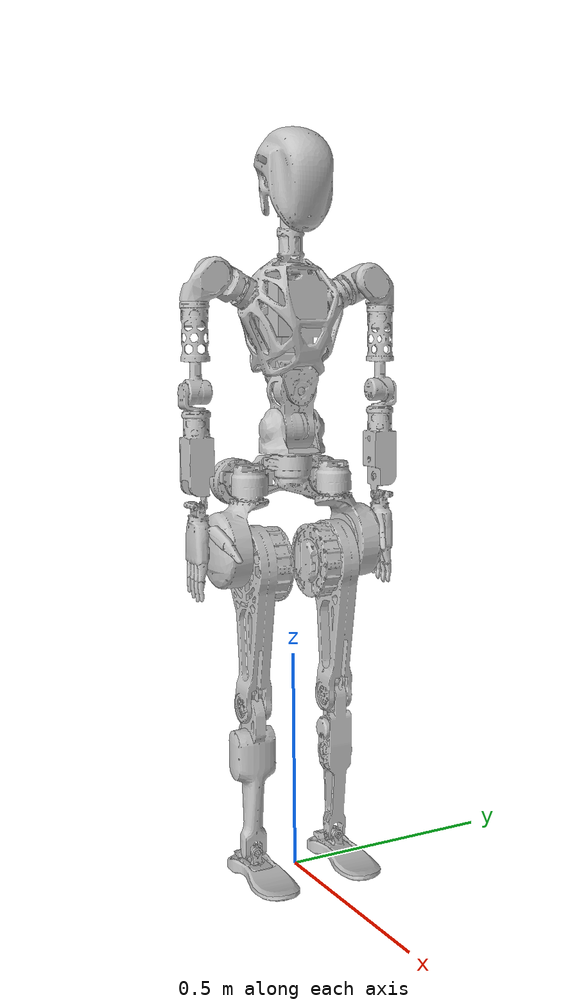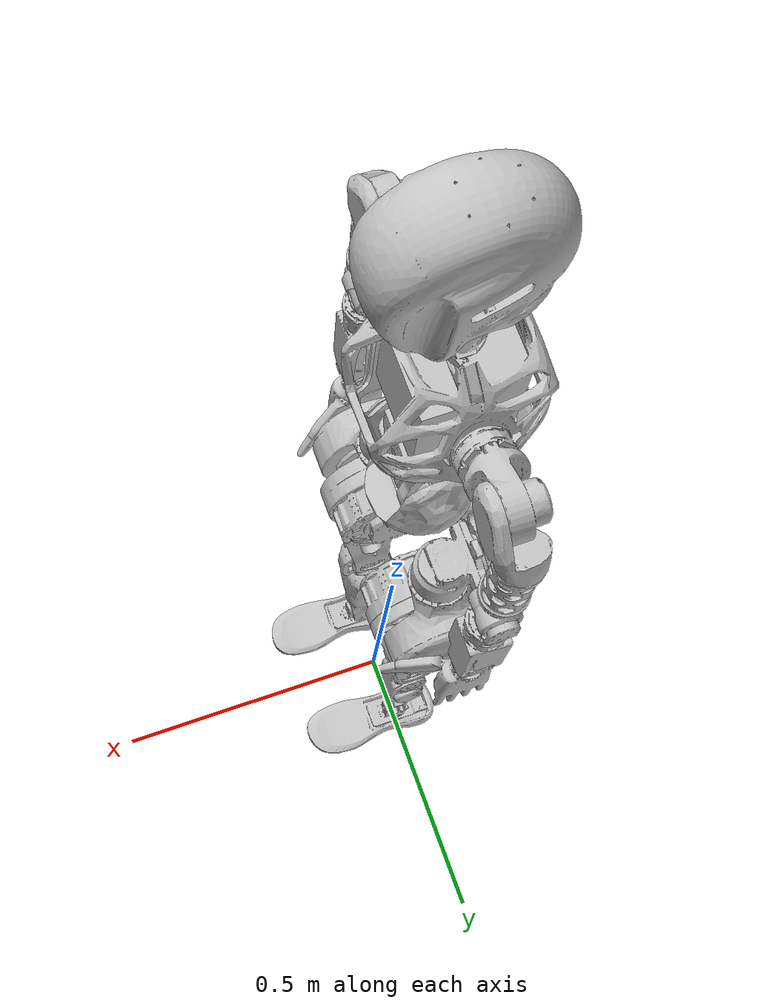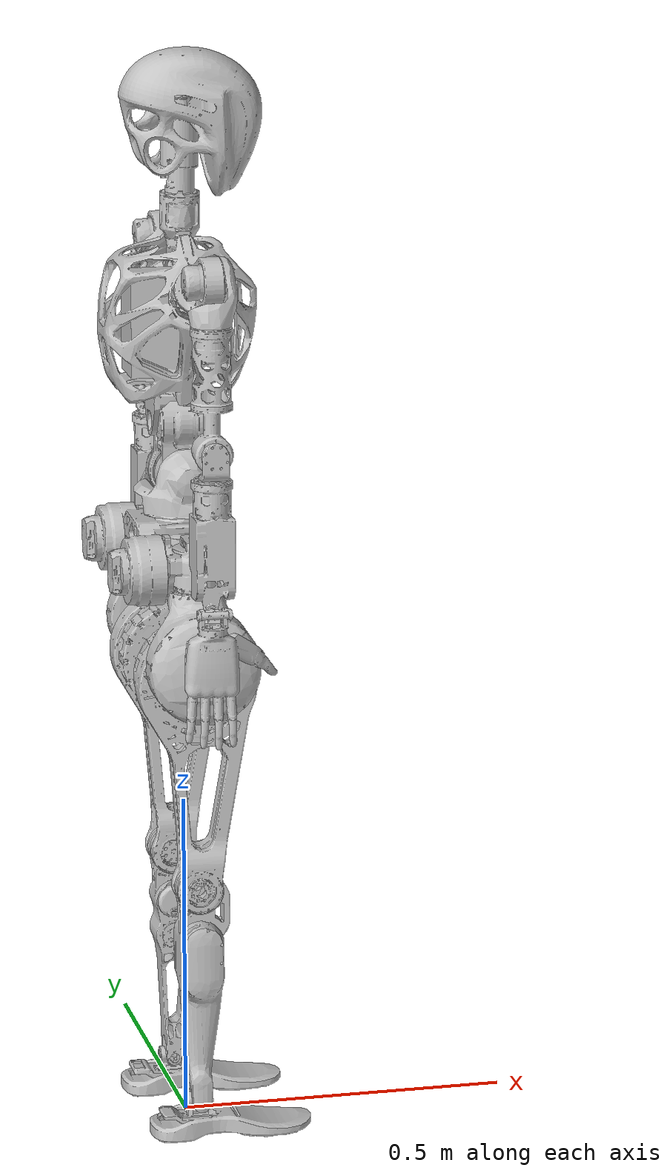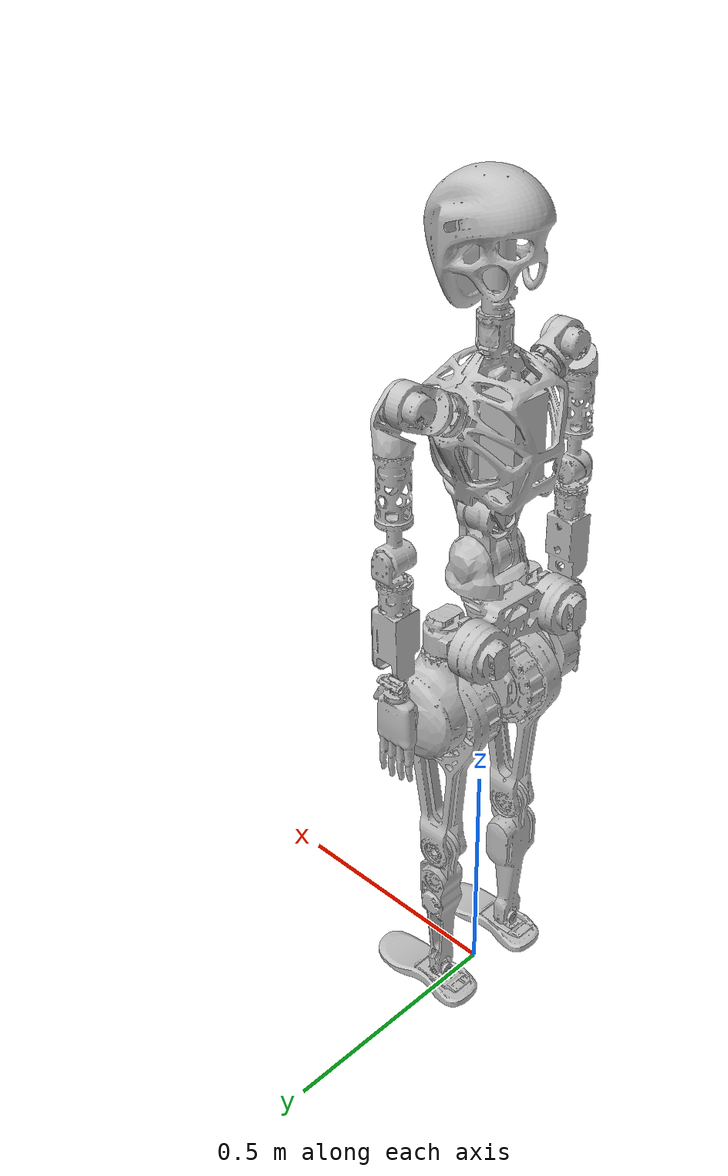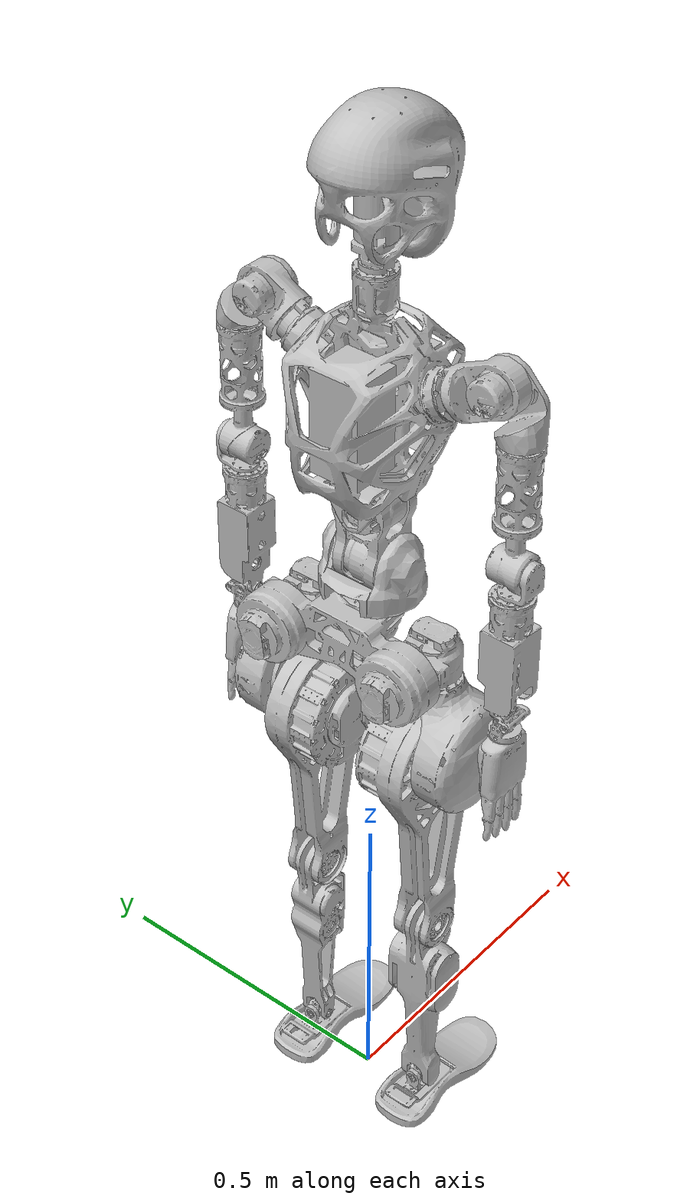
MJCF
<mujoco model="gr1t1">
    <compiler angle="radian" meshdir="assets" autolimits="true"/>

    <default>
        <default class="gr1t1">
            <joint damping="1" armature="0.1"/>
            <default class="visual">
                <geom type="mesh" contype="0" conaffinity="0" group="2"/>
            </default>
            <default class="collision">
                <geom group="3" mass="0" density="0"/>
                <default class="base_collision">
                    <geom type="capsule" size=".014"/>
                </default>
            </default>
            <site size="0.001" rgba="0.5 0.5 0.5 0.3" group="4"/>
        </default>
    </default>

    <asset>
        <mesh name="base" file="base.STL"/>
        <mesh name="link_left_thigh_roll" file="l_thigh_roll.STL"/>
        <mesh name="link_left_thigh_yaw" file="l_thigh_yaw.STL"/>
        <mesh name="link_left_thigh_pitch" file="l_thigh_pitch.STL"/>
        <mesh name="link_left_shank_pitch" file="l_shank_pitch.STL"/>
        <mesh name="link_left_foot_pitch" file="l_foot_pitch.STL"/>
        <mesh name="link_left_foot_roll" file="l_foot_roll.STL"/>
        <mesh name="link_right_thigh_roll" file="r_thigh_roll.STL"/>
        <mesh name="link_right_thigh_yaw" file="r_thigh_yaw.STL"/>
        <mesh name="link_right_thigh_pitch" file="r_thigh_pitch.STL"/>
        <mesh name="link_right_shank_pitch" file="r_shank_pitch.STL"/>
        <mesh name="link_right_foot_pitch" file="r_foot_pitch.STL"/>
        <mesh name="link_right_foot_roll" file="r_foot_roll.STL"/>
        <mesh name="link_waist_yaw" file="waist_yaw.STL"/>
        <mesh name="link_waist_pitch" file="waist_pitch.STL"/>
        <mesh name="link_waist_roll" file="waist_roll.STL"/>
        <mesh name="link_head_yaw" file="head_yaw.STL"/>
        <mesh name="link_head_roll" file="head_roll.STL"/>
        <mesh name="link_head_pitch" file="head_pitch.STL"/>
        <mesh name="link_left_upper_arm_pitch" file="l_upper_arm_pitch.STL"/>
        <mesh name="link_left_upper_arm_roll" file="l_upper_arm_roll.STL"/>
        <mesh name="link_left_upper_arm_yaw" file="l_upper_arm_yaw.STL"/>
        <mesh name="link_left_lower_arm_pitch" file="l_lower_arm_pitch.STL"/>
        <mesh name="link_left_hand_yaw" file="l_hand_yaw.STL"/>
        <mesh name="link_left_hand_roll" file="l_hand_roll.STL"/>
        <mesh name="link_left_hand_pitch" file="l_hand_pitch.STL"/>
        <mesh name="link_right_upper_arm_pitch" file="r_upper_arm_pitch.STL"/>
        <mesh name="link_right_upper_arm_roll" file="r_upper_arm_roll.STL"/>
        <mesh name="link_right_upper_arm_yaw" file="r_upper_arm_yaw.STL"/>
        <mesh name="link_right_lower_arm_pitch" file="r_lower_arm_pitch.STL"/>
        <mesh name="link_right_hand_yaw" file="r_hand_yaw.STL"/>
        <mesh name="link_right_hand_roll" file="r_hand_roll.STL"/>
        <mesh name="link_right_hand_pitch" file="r_hand_pitch.STL"/>
    </asset>

    <worldbody>
        <light mode="targetbodycom" target="base" pos="2 0 2.5"/>

        <body name="base" pos="0 0 0.95" childclass="gr1t1">
            <inertial pos="-0.0508888 0.000109183 -0.0455794" quat="0.706855 0.707166 0.0123661 -0.0109307" mass="6.45117" diaginertia="0.0149302 0.0127972 0.00640923"/>
            <freejoint/>

            <geom class="visual" rgba="0.752941 0.752941 0.752941 1" mesh="base"/>
            <body name="link_left_thigh_roll" pos="-0.047999 0.105 -0.057493">
                <inertial pos="0.04163 3.4568e-05 -0.0021382" quat="0.575529 0.581908 -0.40597 0.406619" mass="1.1437" diaginertia="0.00117548 0.00100413 0.000943892"/>
                <joint name="joint_left_hip_roll" pos="0 0 0" axis="1 0 0" range="-0.09 0.79"/>
                <geom class="visual" rgba="0.752941 0.752941 0.752941 1" mesh="link_left_thigh_roll"/>
                <geom class="collision" size="0.05 0.03" pos="0 0 0" quat="0.707107 0 0.707107 0" type="capsule" rgba="0.752941 0.752941 0.752941 1"/>
                <body name="link_left_thigh_yaw" pos="0.048 0 -0.030499">
                    <inertial pos="0.00018348 0.046462 -0.10389" quat="0.704251 -0.0226446 -0.0453749 0.708138" mass="3.9888" diaginertia="0.0163385 0.0100158 0.00924336"/>
                    <joint name="joint_left_hip_yaw" pos="0 0 0" axis="0 0 1" range="-0.7 0.7"/>
                    <geom class="visual" rgba="0.752941 0.752941 0.752941 1" mesh="link_left_thigh_yaw"/>
                    <body name="link_left_thigh_pitch" pos="0 0 -0.11">
                        <inertial pos="0.0028493 -0.021688 -0.090886" quat="0.707411 -0.0125435 -0.0111264 0.706604" mass="6.369" diaginertia="0.0532352 0.0425096 0.0134363"/>
                        <joint name="joint_left_hip_pitch" pos="0 0 0" axis="0 1 0" range="-1.75 0.7"/>
                        <geom class="visual" rgba="0.752941 0.752941 0.752941 1" mesh="link_left_thigh_pitch"/>
                        <geom class="collision" size="0.05 0.125" pos="0 0 -0.15" type="capsule" rgba="0.75294 0.75294 0.75294 1"/>
                        <body name="link_left_shank_pitch" pos="0 2.4606e-05 -0.36">
                            <inertial pos="0.0024312 -2.9945e-05 -0.11554" quat="0.692137 0.00134576 0.00140217 0.721764" mass="2.1895" diaginertia="0.0162703 0.016117 0.00113627"/>
                            <joint name="joint_left_knee_pitch" pos="0 0 0" axis="0 1 0" range="-0.09 1.92"/>
                            <geom class="visual" rgba="0.752941 0.752941 0.752941 1" mesh="link_left_shank_pitch"/>
                            <geom class="collision" size="0.05 0.1" pos="0 0 -0.15" type="capsule" rgba="0.75294 0.75294 0.75294 1"/>
                            <body name="link_left_foot_pitch" pos="0 2.3239e-05 -0.34">
                                <inertial pos="1.748e-11 4.3804e-11 0" quat="1 3.42295e-05 -6.07362e-06 -2.07897e-10" mass="0.080335" diaginertia="5.1022e-06 4.3976e-06 4.188e-06"/>
                                <joint name="joint_left_ankle_pitch" pos="0 0 0" axis="0 1 0" range="-1.05 0.52"/>
                                <geom class="visual" rgba="0.752941 0.752941 0.752941 1" mesh="link_left_foot_pitch"/>
                                <body name="link_left_foot_roll">
                                    <inertial pos="0.039446 0.00035757 -0.038101" quat="-0.00087198 0.709539 -0.00177594 0.704664" mass="0.584" diaginertia="0.00271032 0.0024027 0.000369145"/>
                                    <joint name="joint_left_ankle_roll" pos="0 0 0" axis="1 0 0" range="-0.44 0.44"/>
                                    <geom class="visual" rgba="0.75294 0.75294 0.75294 1" mesh="link_left_foot_roll"/>
                                    <geom class="collision" name="l_foot_1" size="0.02 0.10" pos="0.05 0.02 -0.035" quat="0.707105 0 0.707108 0" type="capsule" rgba="0.75294 0.75294 0.75294 1"/>
                                    <geom class="collision" name="l_foot_2" size="0.02 0.10" pos="0.05 -0.02 -0.035" quat="0.707105 0 0.707108 0" type="capsule" rgba="0.75294 0.75294 0.75294 1"/>
                                </body>
                            </body>
                        </body>
                    </body>
                </body>
            </body>
            <body name="link_right_thigh_roll" pos="-0.047999 -0.105 -0.057508">
                <inertial pos="0.0416295 3.45678e-05 -0.00213824" quat="0.57555 0.581927 -0.405942 0.406589" mass="1.14367" diaginertia="0.00117548 0.00100417 0.000943891"/>
                <joint name="joint_right_hip_roll" pos="0 0 0" axis="1 0 0" range="-0.79 0.09"/>
                <geom class="visual" rgba="0.752941 0.752941 0.752941 1" mesh="link_right_thigh_roll"/>
                <geom class="collision" size="0.05 0.03" pos="0 0 0" quat="0.707107 0 0.707107 0" type="capsule" rgba="0.752941 0.752941 0.752941 1"/>
                <body name="link_right_thigh_yaw" pos="0.048 0 -0.030499">
                    <inertial pos="-0.00159762 -0.0464482 -0.103899" quat="0.709186 -0.0420808 -0.0194028 0.703497" mass="3.98882" diaginertia="0.0163388 0.0100142 0.00924469"/>
                    <joint name="joint_right_hip_yaw" pos="0 0 0" axis="0 0 1" range="-0.7 0.7"/>
                    <geom class="visual" rgba="0.752941 0.752941 0.752941 1" mesh="link_right_thigh_yaw"/>
                    <body name="link_right_thigh_pitch" pos="0 0 -0.11">
                        <inertial pos="0.002842 0.0217009 -0.0919987" quat="0.706586 -0.0113774 -0.0126258 0.707423" mass="6.36895" diaginertia="0.0532349 0.0424818 0.0134641"/>
                        <joint name="joint_right_hip_pitch" pos="0 0 0" axis="0 1 0" range="-1.75 0.7"/>
                        <geom class="visual" rgba="0.752941 0.752941 0.752941 1" mesh="link_right_thigh_pitch"/>
                        <geom class="collision" size="0.05 0.125" pos="0 0 -0.15" type="capsule" rgba="0.75294 0.75294 0.75294 1"/>
                        <body name="link_right_shank_pitch" pos="0 2.4606e-05 -0.36">
                            <inertial pos="0.00236658 4.56188e-05 -0.115532" quat="0.71872 0.00154106 0.00120241 0.695296" mass="2.18947" diaginertia="0.0162708 0.0161183 0.00113536"/>
                            <joint name="joint_right_knee_pitch" pos="0 0 0" axis="0 1 0" range="-0.09 1.92"/>
                            <geom class="visual" rgba="0.752941 0.752941 0.752941 1" mesh="link_right_shank_pitch"/>
                            <geom class="collision" size="0.05 0.1" pos="0 0 -0.15" type="capsule" rgba="0.75294 0.75294 0.75294 1"/>
                            <body name="link_right_foot_pitch" pos="0 2.3239e-05 -0.34">
                                <inertial pos="1.75705e-11 4.40342e-11 0" quat="1 3.42336e-05 -6.07409e-06 -2.07938e-10" mass="0.0799219" diaginertia="5.11122e-06 4.40004e-06 4.17954e-06"/>
                                <joint name="joint_right_ankle_pitch" pos="0 0 0" axis="0 1 0" range="-1.05 0.52"/>
                                <geom class="visual" rgba="0.752941 0.752941 0.752941 1" mesh="link_right_foot_pitch"/>
                                <body name="link_right_foot_roll">
                                    <inertial pos="0.043909 -0.00032475 -0.039419" quat="0.000727105 0.710094 0.00155959 0.704104" mass="0.58089" diaginertia="0.00280098 0.0024886 0.000368482"/>
                                    <joint name="joint_right_ankle_roll" pos="0 0 0" axis="1 0 0" range="-0.44 0.44"/>
                                    <geom class="visual" rgba="0.752941 0.752941 0.752941 1" mesh="link_right_foot_roll"/>
                                    <geom class="collision" name="r_foot_1" size="0.02 0.10" pos="0.05 0.02 -0.035" quat="0.707105 0 0.707108 0" type="capsule" rgba="0.752941 0.752941 0.752941 1"/>
                                    <geom class="collision" name="r_foot_2" size="0.02 0.10" pos="0.05 -0.02 -0.035" quat="0.707105 0 0.707108 0" type="capsule" rgba="0.752941 0.752941 0.752941 1"/>
                                </body>
                            </body>
                        </body>
                    </body>
                </body>
            </body>
            <body name="link_waist_yaw" pos="0 0 0.0065">
                <inertial pos="-0.010388 -0.00169636 0.0224709" quat="8.03475e-05 0.752953 -6.91813e-06 0.658075" mass="0.37886" diaginertia="0.000387148 0.000354992 0.000193448"/>
                <joint name="joint_waist_yaw" pos="0 0 0" axis="0 0 1" range="-1.05 1.05"/>
                <geom class="visual" rgba="0.752941 0.752941 0.752941 1" mesh="link_waist_yaw"/>
                <geom class="collision" size="0.05 0.01" pos="0 0 -0.06" type="capsule" rgba="0.752941 0.752941 0.752941 1"/>
                <body name="link_waist_pitch" pos="0 0 0.055">
                    <inertial pos="0.00229173 -0.00229364 0.0425378" quat="0.998452 -0.0194486 0.0162447 0.0495079" mass="4.40328" diaginertia="0.00487449 0.00487146 0.00355351"/>
                    <joint name="joint_waist_pitch" pos="0 0 0" axis="0 1 0" range="-0.52 1.22"/>
                    <geom class="visual" rgba="0.752941 0.752941 0.752941 1" mesh="link_waist_pitch"/>
                    <geom class="collision" size="0.05 0.03" pos="0 0 0" quat="0.707107 0.707107 0 0" type="capsule" rgba="0.752941 0.752941 0.752941 1"/>
                    <body name="link_waist_roll" pos="0 0 0.085">
                        <inertial pos="-0.00982804 -1.2954e-05 0.160653" quat="0.999997 1.84368e-05 -0.00260593 -4.00255e-05" mass="7.34393" diaginertia="0.0305266 0.0217567 0.0136783"/>
                        <joint name="joint_waist_roll" pos="0 0 0" axis="1 0 0" range="-0.7 0.7"/>
                        <geom class="visual" rgba="0.752941 0.752941 0.752941 1" mesh="link_waist_roll"/>
                        <geom class="collision" size="0.1 0.07" pos="0 0 0.15" type="capsule" rgba="0.752941 0.752941 0.752941 1"/>
                        <body name="link_head_yaw" pos="0 -2.3548e-05 0.34453">
                            <inertial pos="0.000255273 -1.43143e-05 0.0571737" quat="0.698659 0.111628 0.112302 0.697713" mass="0.168425" diaginertia="0.00013241 0.000126266 6.86988e-05"/>
                            <joint name="joint_head_yaw" pos="0 0 0" axis="0 0 1" range="-2.71 2.71"/>
                            <geom class="visual" rgba="0.752941 0.752941 0.752941 1" mesh="link_head_yaw"/>
                            <body name="link_head_roll" pos="0 0 0.1225">
                                <inertial pos="-0.000539717 0.00299723 -0.00194711" quat="0.498775 0.509039 0.50481 0.487104" mass="0.0189574" diaginertia="5.66154e-06 3.71917e-06 3.07146e-06"/>
                                <joint name="joint_head_roll" pos="0 0 0" axis="1 0 0" range="-0.35 0.35"/>
                                <geom class="visual" rgba="0.752941 0.752941 0.752941 1" mesh="link_head_roll"/>
                                <body name="link_head_pitch">
                                    <inertial pos="0.0179937 0.000157203 -0.0107884" quat="-0.00317787 0.890883 0.0047882 0.454197" mass="0.315067" diaginertia="0.00129389 0.00105273 0.000852366"/>
                                    <joint name="joint_head_pitch" pos="0 0 0" axis="0 1 0" range="-0.52 0.35"/>
                                    <geom class="visual" rgba="0.752941 0.752941 0.752941 1" mesh="link_head_pitch"/>
                                    <geom class="collision" size="0.07" pos="0 0 0" rgba="0.75294 0.75294 0.75294 1"/>
                                </body>
                            </body>
                        </body>
                        <body name="link_left_upper_arm_pitch" pos="0 0.12661 0.21727" quat="0.976289 0.216473 0 0">
                            <inertial pos="0.00515733 0.0588337 0.000122944" quat="0.999793 0.0203364 -0.000117253 0.0011083" mass="0.777394" diaginertia="0.000546411 0.000340581 0.000319359"/>
                            <joint name="joint_left_shoulder_pitch" pos="0 0 0" axis="0 1 0" range="-2.79 1.92"/>
                            <geom class="visual" rgba="0.752941 0.752941 0.752941 1" mesh="link_left_upper_arm_pitch"/>
                            <body name="link_left_upper_arm_roll" pos="0 0.067 0" quat="0.976289 -0.216473 0 0">
                                <inertial pos="0.0260055 0.0238305 -0.0272078" quat="0.906707 0.298574 0.228734 -0.190834" mass="0.084111" diaginertia="9.66711e-05 8.99184e-05 2.54726e-05"/>
                                <joint name="joint_left_shoulder_roll" pos="0 0 0" axis="1 0 0" range="-0.57 3.27"/>
                                <geom class="visual" rgba="0.752941 0.752941 0.752941 1" mesh="link_left_upper_arm_roll"/>
                                <geom class="collision" size="0.04" pos="0 0 0" rgba="0.75294 0.75294 0.75294 1"/>
                                <body name="link_left_upper_arm_yaw" pos="0 0.040004 -0.057502">
                                    <inertial pos="-4.12427e-05 0.00135031 -0.101007" quat="0.706543 0.0248514 -0.0268343 0.706724" mass="0.78993" diaginertia="0.000480863 0.000420363 0.000315608"/>
                                    <joint name="joint_left_shoulder_yaw" pos="0 0 0" axis="0 0 1" range="-2.97 2.97"/>
                                    <geom class="visual" rgba="0.752941 0.752941 0.752941 1" mesh="link_left_upper_arm_yaw"/>
                                    <geom class="collision" size="0.03 0.055" pos="0 0 -0.07" type="capsule" rgba="0.752941 0.752941 0.752941 1"/>
                                    <body name="link_left_lower_arm_pitch" pos="0 1.28869e-05 -0.188546">
                                        <inertial pos="2.60519e-07 0.0196937 -0.0210902" quat="0.675254 -0.209845 0.209837 0.675252" mass="0.0553958" diaginertia="2.92256e-05 2.63267e-05 1.3293e-05"/>
                                        <joint name="joint_left_elbow_pitch" pos="0 0 0" axis="0 1 0" range="-2.27 2.27"/>
                                        <geom class="visual" rgba="0.752941 0.752941 0.752941 1" mesh="link_left_lower_arm_pitch"/>
                                        <body name="link_left_hand_yaw" pos="0 0 -0.0405043">
                                            <inertial pos="-4.20996e-05 0.000336116 -0.0559829" quat="0.999784 -0.0189715 -0.00676208 0.00509819" mass="0.606076"
                                                      diaginertia="0.000747266 0.000709257 0.000280769"/>
                                            <joint name="joint_left_wrist_yaw" pos="0 0 0" axis="0 0 1" range="-2.97 2.97"/>
                                            <geom class="visual" rgba="0.752941 0.752941 0.752941 1" mesh="link_left_hand_yaw"/>
                                            <geom class="collision" size="0.035 0.085" pos="0 0 -0.08" type="capsule" rgba="0.752941 0.752941 0.752941 1"/>
                                            <body name="link_left_hand_roll" pos="0 1.3775e-05 -0.20155">
                                                <inertial pos="-1.5483e-08 -0.00044846 -1.9394e-08" quat="0 0.7071 0 0.707114" mass="0.0054473" diaginertia="3.6036e-07 3.5527e-07 7.344e-08"/>
                                                <joint name="joint_left_wrist_roll" pos="0 0 0" axis="1 0 0" range="-0.61 0.61"/>
                                                <geom class="visual" rgba="0.752941 0.752941 0.752941 1" mesh="link_left_hand_roll"/>
                                                <body name="link_left_hand_pitch">
                                                    <inertial pos="0.0071289 -0.0026192 -0.078567" quat="0.298548 0.646339 0.631172 0.307795" mass="0.5239"
                                                              diaginertia="0.000345825 0.000211684 0.000195941"/>
                                                    <joint name="joint_left_wrist_pitch" pos="0 0 0" axis="0 1 0" range="-0.61 0.61"/>
                                                    <geom class="visual" rgba="0.752941 0.752941 0.752941 1" mesh="link_left_hand_pitch"/>
                                                    <geom class="collision" size="0.04" pos="0 0 -0.07" rgba="0.75294 0.75294 0.75294 1"/>
                                                </body>
                                            </body>
                                        </body>
                                    </body>
                                </body>
                            </body>
                        </body>
                        <body name="link_right_upper_arm_pitch" pos="0 -0.12664 0.21725" quat="0.976303 -0.216409 0 0">
                            <inertial pos="0.00515735 -0.0587916 0.000122944" quat="0.999675 -0.0254775 -0.000125407 -0.000494276" mass="0.777391" diaginertia="0.00054641 0.000340601 0.00031934"/>
                            <joint name="joint_right_shoulder_pitch" pos="0 0 0" axis="0 1 0" range="-2.79 1.92"/>
                            <geom class="visual" rgba="0.752941 0.752941 0.752941 1" mesh="link_right_upper_arm_pitch"/>
                            <body name="link_right_upper_arm_roll" pos="0 -0.067 0" quat="0.976303 0.216409 0 0">
                                <inertial pos="0.0260059 -0.0238264 -0.0272109" quat="0.906733 -0.298529 0.228698 0.190821" mass="0.0840989" diaginertia="9.66585e-05 8.99068e-05 2.54689e-05"/>
                                <joint name="joint_right_shoulder_roll" pos="0 0 0" axis="1 0 0" range="-3.27 0.57"/>
                                <geom class="visual" rgba="0.752941 0.752941 0.752941 1" mesh="link_right_upper_arm_roll"/>
                                <geom class="collision" size="0.04" pos="0 0 0" rgba="0.75294 0.75294 0.75294 1"/>
                                <body name="link_right_upper_arm_yaw" pos="0 -0.039996 -0.057473">
                                    <inertial pos="0.00017083 -0.00124148 -0.100981" quat="0.712176 -0.02561 0.0250075 0.701088" mass="0.78993" diaginertia="0.000481112 0.000420147 0.000315576"/>
                                    <joint name="joint_right_shoulder_yaw" pos="0 0 0" axis="0 0 1" range="-2.97 2.97"/>
                                    <geom class="visual" rgba="0.752941 0.752941 0.752941 1" mesh="link_right_upper_arm_yaw"/>
                                    <geom class="collision" size="0.03 0.055" pos="0 0 -0.07" type="capsule" rgba="0.752941 0.752941 0.752941 1"/>
                                    <body name="link_right_lower_arm_pitch" pos="0 1.28859e-05 -0.18853">
                                        <inertial pos="2.54538e-07 -0.0196908 -0.0210929" quat="0.675237 0.209883 -0.209892 0.67524" mass="0.0553958" diaginertia="2.92256e-05 2.63267e-05 1.3293e-05"/>
                                        <joint name="joint_right_elbow_pitch" pos="0 0 0" axis="0 1 0" range="-2.27 2.27"/>
                                        <geom class="visual" rgba="0.752941 0.752941 0.752941 1" mesh="link_right_lower_arm_pitch"/>
                                        <body name="link_right_hand_yaw" pos="0 0 -0.0405">
                                            <inertial pos="0.000158044 -0.000478822 -0.0559415" quat="0.999772 0.019131 0.00724385 -0.00608553" mass="0.606076"
                                                      diaginertia="0.000748132 0.000708413 0.000280748"/>
                                            <joint name="joint_right_wrist_yaw" pos="0 0 0" axis="0 0 1" range="-2.97 2.97"/>
                                            <geom class="visual" rgba="0.752941 0.752941 0.752941 1" mesh="link_right_hand_yaw"/>
                                            <geom class="collision" size="0.035 0.085" pos="0 0 -0.08" type="capsule" rgba="0.752941 0.752941 0.752941 1"/>
                                            <body name="link_right_hand_roll" pos="0 1.3775e-05 -0.20153">
                                                <inertial pos="1.5545e-08 0.00044846 4.1938e-08" quat="0 0.707105 0 0.707108" mass="0.0054473" diaginertia="3.6036e-07 3.5527e-07 7.344e-08"/>
                                                <joint name="joint_right_wrist_roll" pos="0 0 0" axis="1 0 0" range="-0.61 0.61"/>
                                                <geom class="visual" rgba="0.752941 0.752941 0.752941 1" mesh="link_right_hand_roll"/>
                                                <body name="link_right_hand_pitch">
                                                    <inertial pos="0.0060733 0.0018907 -0.084578" quat="0.647336 -0.27161 -0.257721 0.6639" mass="0.53221"
                                                              diaginertia="0.000319947 0.000196296 0.000182477"/>
                                                    <joint name="joint_right_wrist_pitch" pos="0 0 0" axis="0 1 0" range="-0.61 0.61"/>
                                                    <geom class="visual" rgba="0.752941 0.752941 0.752941 1" mesh="link_right_hand_pitch"/>
                                                    <geom class="collision" size="0.04" pos="0 0 -0.07" rgba="0.75294 0.75294 0.75294 1"/>
                                                </body>
                                            </body>
                                        </body>
                                    </body>
                                </body>
                            </body>
                        </body>
                    </body>
                </body>
            </body>
        </body>
    </worldbody>

    <actuator>
        <!-- left leg -->
        <motor class="gr1t1" name="link_left_hip_roll" joint="joint_left_hip_roll" ctrlrange="-80 80"/>
        <motor class="gr1t1" name="link_left_hip_yaw" joint="joint_left_hip_yaw" ctrlrange="-60 60"/>
        <motor class="gr1t1" name="link_left_hip_pitch" joint="joint_left_hip_pitch" ctrlrange="-160 160"/>
        <motor class="gr1t1" name="link_left_knee_pitch" joint="joint_left_knee_pitch" ctrlrange="-160 160"/>
        <motor class="gr1t1" name="link_left_ankle_pitch" joint="joint_left_ankle_pitch" ctrlrange="-16 16"/>
        <motor class="gr1t1" name="link_left_ankle_roll" joint="joint_left_ankle_roll" ctrlrange="-8 8"/>

        <!-- right leg -->
        <motor class="gr1t1" name="link_right_hip_roll" joint="joint_right_hip_roll" ctrlrange="-80 80"/>
        <motor class="gr1t1" name="link_right_hip_yaw" joint="joint_right_hip_yaw" ctrlrange="-60 60"/>
        <motor class="gr1t1" name="link_right_hip_pitch" joint="joint_right_hip_pitch" ctrlrange="-160 160"/>
        <motor class="gr1t1" name="link_right_knee_pitch" joint="joint_right_knee_pitch" ctrlrange="-160 160"/>
        <motor class="gr1t1" name="link_right_ankle_pitch" joint="joint_right_ankle_pitch" ctrlrange="-16 16"/>
        <motor class="gr1t1" name="link_right_ankle_roll" joint="joint_right_ankle_roll" ctrlrange="-8 8"/>

        <!-- waist -->
        <motor class="gr1t1" name="link_waist_yaw" joint="joint_waist_yaw" ctrlrange="-82.5 82.5"/>
        <motor class="gr1t1" name="link_waist_pitch" joint="joint_waist_pitch" ctrlrange="-82.5 82.5"/>
        <motor class="gr1t1" name="link_waist_roll" joint="joint_waist_roll" ctrlrange="-82.5 82.5"/>

        <!-- head -->
        <motor class="gr1t1" name="link_head_yaw" joint="joint_head_yaw" ctrlrange="-10.2 10.2"/>
        <motor class="gr1t1" name="link_head_roll" joint="joint_head_roll" ctrlrange="-3.95 3.95"/>
        <motor class="gr1t1" name="link_head_pitch" joint="joint_head_pitch" ctrlrange="-3.95 3.95"/>

        <!-- left arm -->
        <motor class="gr1t1" name="link_left_shoulder_pitch" joint="joint_left_shoulder_pitch" ctrlrange="-38 38"/>
        <motor class="gr1t1" name="link_left_shoulder_roll" joint="joint_left_shoulder_roll" ctrlrange="-38 38"/>
        <motor class="gr1t1" name="link_left_shoulder_yaw" joint="joint_left_shoulder_yaw" ctrlrange="-30 30"/>
        <motor class="gr1t1" name="link_left_elbow_pitch" joint="joint_left_elbow_pitch" ctrlrange="-30 30"/>
        <motor class="gr1t1" name="link_left_wrist_yaw" joint="joint_left_wrist_yaw" ctrlrange="-10.2 10.2"/>
        <motor class="gr1t1" name="link_left_wrist_roll" joint="joint_left_wrist_roll" ctrlrange="-3.95 3.95"/>
        <motor class="gr1t1" name="link_left_wrist_pitch" joint="joint_left_wrist_pitch" ctrlrange="-3.95 3.95"/>

        <!-- right arm -->
        <motor class="gr1t1" name="link_right_shoulder_pitch" joint="joint_right_shoulder_pitch" ctrlrange="-38 38"/>
        <motor class="gr1t1" name="link_right_shoulder_roll" joint="joint_right_shoulder_roll" ctrlrange="-38 38"/>
        <motor class="gr1t1" name="link_right_shoulder_yaw" joint="joint_right_shoulder_yaw" ctrlrange="-30 30"/>
        <motor class="gr1t1" name="link_right_elbow_pitch" joint="joint_right_elbow_pitch" ctrlrange="-30 30"/>
        <motor class="gr1t1" name="link_right_wrist_yaw" joint="joint_right_wrist_yaw" ctrlrange="-10.2 10.2"/>
        <motor class="gr1t1" name="link_right_wrist_roll" joint="joint_right_wrist_roll" ctrlrange="-3.95 3.95"/>
        <motor class="gr1t1" name="link_right_wrist_pitch" joint="joint_right_wrist_pitch" ctrlrange="-3.95 3.95"/>
    </actuator>
</mujoco>
